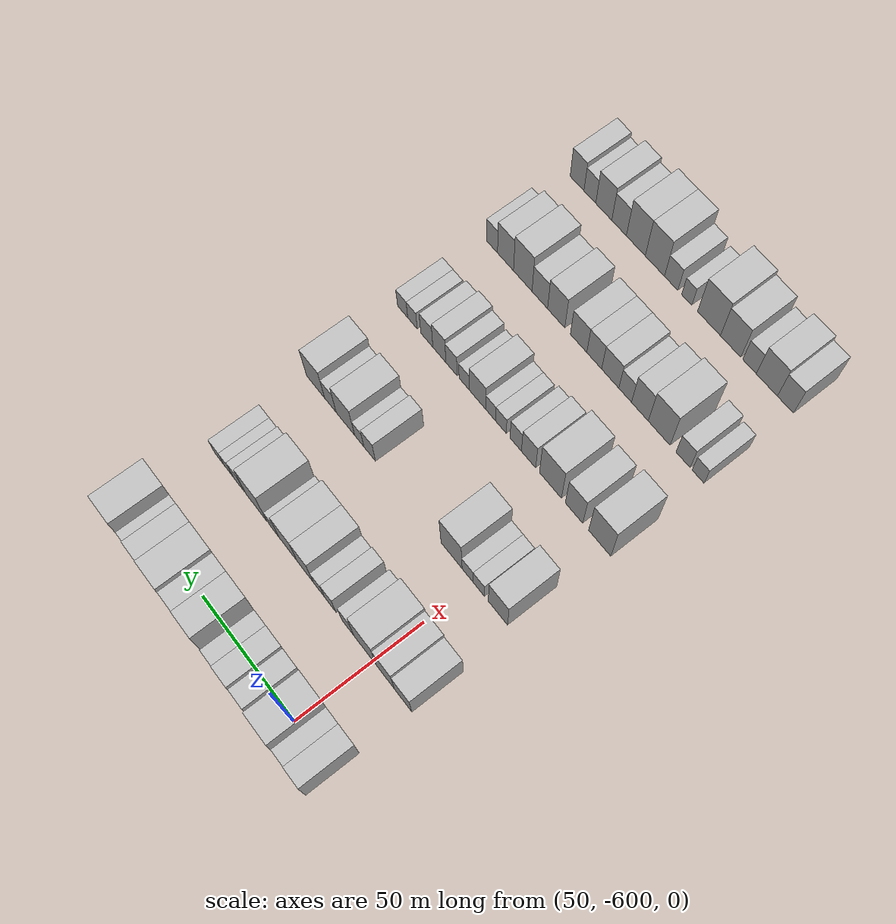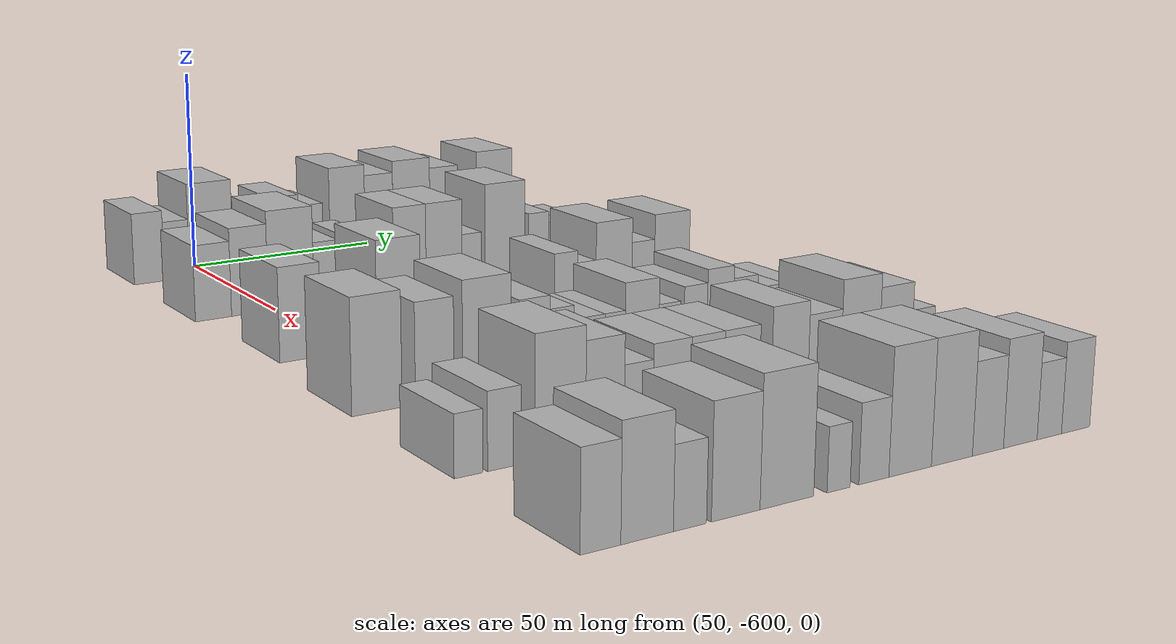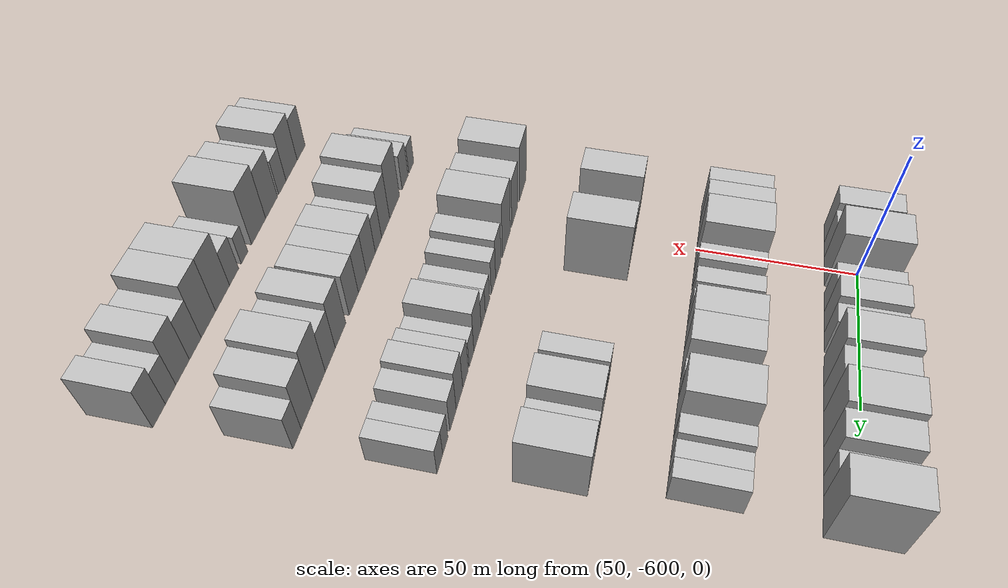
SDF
<sdf version="1.6">
 <world name="default">
  <model name="building_1">
   <static>1</static>
   <pose>50.0000 -616.0534 0 0.000000 0.000000 0.000000</pose>
   <link name="link">
    <pose>0 0 9.00 0 0 0</pose>
    <collision name="collision"><geometry><box><size>20.0000 7.8933 18.0000</size></box></geometry></collision>
    <visual name="visual">
     <cast_shadows>0</cast_shadows>
     <geometry><box><size>20.0000 7.8933 18.0000</size></box></geometry>
     <material>
      <script>
       <uri>model://HANNAS_wall/materials/scripts</uri>
       <uri>model://HANNAS_wall/materials/textures</uri>
       <name>vrc/HANNAS_wall</name>
      </script>
     </material>
    </visual>
   </link>
  </model>
  <model name="building_2">
   <static>1</static>
   <pose>50.0000 -608.7491 0 0.000000 0.000000 0.000000</pose>
   <link name="link">
    <pose>0 0 7.50 0 0 0</pose>
    <collision name="collision"><geometry><box><size>20.0000 6.7152 15.0000</size></box></geometry></collision>
    <visual name="visual">
     <cast_shadows>0</cast_shadows>
     <geometry><box><size>20.0000 6.7152 15.0000</size></box></geometry>
     <material>
      <script>
       <uri>model://HANNAS_wall/materials/scripts</uri>
       <uri>model://HANNAS_wall/materials/textures</uri>
       <name>vrc/HANNAS_wall</name>
      </script>
     </material>
    </visual>
   </link>
  </model>
  <model name="building_3">
   <static>1</static>
   <pose>50.0000 -599.4543 0 0.000000 0.000000 0.000000</pose>
   <link name="link">
    <pose>0 0 12.00 0 0 0</pose>
    <collision name="collision"><geometry><box><size>20.0000 11.8744 24.0000</size></box></geometry></collision>
    <visual name="visual">
     <cast_shadows>0</cast_shadows>
     <geometry><box><size>20.0000 11.8744 24.0000</size></box></geometry>
     <material>
      <script>
       <uri>model://HANNAS_wall/materials/scripts</uri>
       <uri>model://HANNAS_wall/materials/textures</uri>
       <name>vrc/HANNAS_wall</name>
      </script>
     </material>
    </visual>
   </link>
  </model>
  <model name="building_4">
   <static>1</static>
   <pose>50.0000 -586.7873 0 0.000000 0.000000 0.000000</pose>
   <link name="link">
    <pose>0 0 7.50 0 0 0</pose>
    <collision name="collision"><geometry><box><size>20.0000 7.4596 15.0000</size></box></geometry></collision>
    <visual name="visual">
     <cast_shadows>0</cast_shadows>
     <geometry><box><size>20.0000 7.4596 15.0000</size></box></geometry>
     <material>
      <script>
       <uri>model://HANNAS_wall/materials/scripts</uri>
       <uri>model://HANNAS_wall/materials/textures</uri>
       <name>vrc/HANNAS_wall</name>
      </script>
     </material>
    </visual>
   </link>
  </model>
  <model name="building_5">
   <static>1</static>
   <pose>50.0000 -579.0176 0 0.000000 0.000000 0.000000</pose>
   <link name="link">
    <pose>0 0 9.00 0 0 0</pose>
    <collision name="collision"><geometry><box><size>20.0000 8.0798 18.0000</size></box></geometry></collision>
    <visual name="visual">
     <cast_shadows>0</cast_shadows>
     <geometry><box><size>20.0000 8.0798 18.0000</size></box></geometry>
     <material>
      <script>
       <uri>model://HANNAS_wall/materials/scripts</uri>
       <uri>model://HANNAS_wall/materials/textures</uri>
       <name>vrc/HANNAS_wall</name>
      </script>
     </material>
    </visual>
   </link>
  </model>
  <model name="building_6">
   <static>1</static>
   <pose>50.0000 -571.4903 0 0.000000 0.000000 0.000000</pose>
   <link name="link">
    <pose>0 0 7.50 0 0 0</pose>
    <collision name="collision"><geometry><box><size>20.0000 6.9748 15.0000</size></box></geometry></collision>
    <visual name="visual">
     <cast_shadows>0</cast_shadows>
     <geometry><box><size>20.0000 6.9748 15.0000</size></box></geometry>
     <material>
      <script>
       <uri>model://HANNAS_wall/materials/scripts</uri>
       <uri>model://HANNAS_wall/materials/textures</uri>
       <name>vrc/HANNAS_wall</name>
      </script>
     </material>
    </visual>
   </link>
  </model>
  <model name="building_7">
   <static>1</static>
   <pose>50.0000 -560.8347 0 0.000000 0.000000 0.000000</pose>
   <link name="link">
    <pose>0 0 12.00 0 0 0</pose>
    <collision name="collision"><geometry><box><size>20.0000 10.3364 24.0000</size></box></geometry></collision>
    <visual name="visual">
     <cast_shadows>0</cast_shadows>
     <geometry><box><size>20.0000 10.3364 24.0000</size></box></geometry>
     <material>
      <script>
       <uri>model://HANNAS_wall/materials/scripts</uri>
       <uri>model://HANNAS_wall/materials/textures</uri>
       <name>vrc/HANNAS_wall</name>
      </script>
     </material>
    </visual>
   </link>
  </model>
  <model name="building_8">
   <static>1</static>
   <pose>50.0000 -551.4327 0 0.000000 0.000000 0.000000</pose>
   <link name="link">
    <pose>0 0 10.50 0 0 0</pose>
    <collision name="collision"><geometry><box><size>20.0000 8.4676 21.0000</size></box></geometry></collision>
    <visual name="visual">
     <cast_shadows>0</cast_shadows>
     <geometry><box><size>20.0000 8.4676 21.0000</size></box></geometry>
     <material>
      <script>
       <uri>model://HANNAS_wall/materials/scripts</uri>
       <uri>model://HANNAS_wall/materials/textures</uri>
       <name>vrc/HANNAS_wall</name>
      </script>
     </material>
    </visual>
   </link>
  </model>
  <model name="building_9">
   <static>1</static>
   <pose>50.0000 -541.5499 0 0.000000 0.000000 0.000000</pose>
   <link name="link">
    <pose>0 0 12.00 0 0 0</pose>
    <collision name="collision"><geometry><box><size>20.0000 11.2979 24.0000</size></box></geometry></collision>
    <visual name="visual">
     <cast_shadows>0</cast_shadows>
     <geometry><box><size>20.0000 11.2979 24.0000</size></box></geometry>
     <material>
      <script>
       <uri>model://HANNAS_wall/materials/scripts</uri>
       <uri>model://HANNAS_wall/materials/textures</uri>
       <name>vrc/HANNAS_wall</name>
      </script>
     </material>
    </visual>
   </link>
  </model>
  <model name="building_10">
   <static>1</static>
   <pose>50.0000 -531.5156 0 0.000000 0.000000 0.000000</pose>
   <link name="link">
    <pose>0 0 10.50 0 0 0</pose>
    <collision name="collision"><geometry><box><size>20.0000 8.7708 21.0000</size></box></geometry></collision>
    <visual name="visual">
     <cast_shadows>0</cast_shadows>
     <geometry><box><size>20.0000 8.7708 21.0000</size></box></geometry>
     <material>
      <script>
       <uri>model://HANNAS_wall/materials/scripts</uri>
       <uri>model://HANNAS_wall/materials/textures</uri>
       <name>vrc/HANNAS_wall</name>
      </script>
     </material>
    </visual>
   </link>
  </model>
  <model name="building_11">
   <static>1</static>
   <pose>50.0000 -524.1173 0 0.000000 0.000000 0.000000</pose>
   <link name="link">
    <pose>0 0 7.50 0 0 0</pose>
    <collision name="collision"><geometry><box><size>20.0000 6.0257 15.0000</size></box></geometry></collision>
    <visual name="visual">
     <cast_shadows>0</cast_shadows>
     <geometry><box><size>20.0000 6.0257 15.0000</size></box></geometry>
     <material>
      <script>
       <uri>model://HANNAS_wall/materials/scripts</uri>
       <uri>model://HANNAS_wall/materials/textures</uri>
       <name>vrc/HANNAS_wall</name>
      </script>
     </material>
    </visual>
   </link>
  </model>
  <model name="building_12">
   <static>1</static>
   <pose>50.0000 -515.4164 0 0.000000 0.000000 0.000000</pose>
   <link name="link">
    <pose>0 0 12.00 0 0 0</pose>
    <collision name="collision"><geometry><box><size>20.0000 11.3762 24.0000</size></box></geometry></collision>
    <visual name="visual">
     <cast_shadows>0</cast_shadows>
     <geometry><box><size>20.0000 11.3762 24.0000</size></box></geometry>
     <material>
      <script>
       <uri>model://HANNAS_wall/materials/scripts</uri>
       <uri>model://HANNAS_wall/materials/textures</uri>
       <name>vrc/HANNAS_wall</name>
      </script>
     </material>
    </visual>
   </link>
  </model>
  <model name="building_127">
   <static>1</static>
   <pose>90.0000 -615.5241 0 0.000000 0.000000 0.000000</pose>
   <link name="link">
    <pose>0 0 9.00 0 0 0</pose>
    <collision name="collision"><geometry><box><size>20.0000 8.9518 18.0000</size></box></geometry></collision>
    <visual name="visual">
     <cast_shadows>0</cast_shadows>
     <geometry><box><size>20.0000 8.9518 18.0000</size></box></geometry>
     <material>
      <script>
       <uri>model://HANNAS_wall/materials/scripts</uri>
       <uri>model://HANNAS_wall/materials/textures</uri>
       <name>vrc/HANNAS_wall</name>
      </script>
     </material>
    </visual>
   </link>
  </model>
  <model name="building_128">
   <static>1</static>
   <pose>90.0000 -606.3839 0 0.000000 0.000000 0.000000</pose>
   <link name="link">
    <pose>0 0 10.50 0 0 0</pose>
    <collision name="collision"><geometry><box><size>20.0000 9.3287 21.0000</size></box></geometry></collision>
    <visual name="visual">
     <cast_shadows>0</cast_shadows>
     <geometry><box><size>20.0000 9.3287 21.0000</size></box></geometry>
     <material>
      <script>
       <uri>model://HANNAS_wall/materials/scripts</uri>
       <uri>model://HANNAS_wall/materials/textures</uri>
       <name>vrc/HANNAS_wall</name>
      </script>
     </material>
    </visual>
   </link>
  </model>
  <model name="building_129">
   <static>1</static>
   <pose>90.0000 -595.7800 0 0.000000 0.000000 0.000000</pose>
   <link name="link">
    <pose>0 0 12.00 0 0 0</pose>
    <collision name="collision"><geometry><box><size>20.0000 11.8791 24.0000</size></box></geometry></collision>
    <visual name="visual">
     <cast_shadows>0</cast_shadows>
     <geometry><box><size>20.0000 11.8791 24.0000</size></box></geometry>
     <material>
      <script>
       <uri>model://HANNAS_wall/materials/scripts</uri>
       <uri>model://HANNAS_wall/materials/textures</uri>
       <name>vrc/HANNAS_wall</name>
      </script>
     </material>
    </visual>
   </link>
  </model>
  <model name="building_130">
   <static>1</static>
   <pose>90.0000 -586.6207 0 0.000000 0.000000 0.000000</pose>
   <link name="link">
    <pose>0 0 7.50 0 0 0</pose>
    <collision name="collision"><geometry><box><size>20.0000 6.4397 15.0000</size></box></geometry></collision>
    <visual name="visual">
     <cast_shadows>0</cast_shadows>
     <geometry><box><size>20.0000 6.4397 15.0000</size></box></geometry>
     <material>
      <script>
       <uri>model://HANNAS_wall/materials/scripts</uri>
       <uri>model://HANNAS_wall/materials/textures</uri>
       <name>vrc/HANNAS_wall</name>
      </script>
     </material>
    </visual>
   </link>
  </model>
  <model name="building_131">
   <static>1</static>
   <pose>90.0000 -577.3490 0 0.000000 0.000000 0.000000</pose>
   <link name="link">
    <pose>0 0 7.50 0 0 0</pose>
    <collision name="collision"><geometry><box><size>20.0000 6.1038 15.0000</size></box></geometry></collision>
    <visual name="visual">
     <cast_shadows>0</cast_shadows>
     <geometry><box><size>20.0000 6.1038 15.0000</size></box></geometry>
     <material>
      <script>
       <uri>model://HANNAS_wall/materials/scripts</uri>
       <uri>model://HANNAS_wall/materials/textures</uri>
       <name>vrc/HANNAS_wall</name>
      </script>
     </material>
    </visual>
   </link>
  </model>
  <model name="building_132">
   <static>1</static>
   <pose>90.0000 -571.3215 0 0.000000 0.000000 0.000000</pose>
   <link name="link">
    <pose>0 0 6.00 0 0 0</pose>
    <collision name="collision"><geometry><box><size>20.0000 5.9512 12.0000</size></box></geometry></collision>
    <visual name="visual">
     <cast_shadows>0</cast_shadows>
     <geometry><box><size>20.0000 5.9512 12.0000</size></box></geometry>
     <material>
      <script>
       <uri>model://HANNAS_wall/materials/scripts</uri>
       <uri>model://HANNAS_wall/materials/textures</uri>
       <name>vrc/HANNAS_wall</name>
      </script>
     </material>
    </visual>
   </link>
  </model>
  <model name="building_133">
   <static>1</static>
   <pose>90.0000 -563.7918 0 0.000000 0.000000 0.000000</pose>
   <link name="link">
    <pose>0 0 10.50 0 0 0</pose>
    <collision name="collision"><geometry><box><size>20.0000 9.1081 21.0000</size></box></geometry></collision>
    <visual name="visual">
     <cast_shadows>0</cast_shadows>
     <geometry><box><size>20.0000 9.1081 21.0000</size></box></geometry>
     <material>
      <script>
       <uri>model://HANNAS_wall/materials/scripts</uri>
       <uri>model://HANNAS_wall/materials/textures</uri>
       <name>vrc/HANNAS_wall</name>
      </script>
     </material>
    </visual>
   </link>
  </model>
  <model name="building_134">
   <static>1</static>
   <pose>90.0000 -554.0971 0 0.000000 0.000000 0.000000</pose>
   <link name="link">
    <pose>0 0 10.50 0 0 0</pose>
    <collision name="collision"><geometry><box><size>20.0000 10.2813 21.0000</size></box></geometry></collision>
    <visual name="visual">
     <cast_shadows>0</cast_shadows>
     <geometry><box><size>20.0000 10.2813 21.0000</size></box></geometry>
     <material>
      <script>
       <uri>model://HANNAS_wall/materials/scripts</uri>
       <uri>model://HANNAS_wall/materials/textures</uri>
       <name>vrc/HANNAS_wall</name>
      </script>
     </material>
    </visual>
   </link>
  </model>
  <model name="building_135">
   <static>1</static>
   <pose>90.0000 -546.1212 0 0.000000 0.000000 0.000000</pose>
   <link name="link">
    <pose>0 0 6.00 0 0 0</pose>
    <collision name="collision"><geometry><box><size>20.0000 5.6704 12.0000</size></box></geometry></collision>
    <visual name="visual">
     <cast_shadows>0</cast_shadows>
     <geometry><box><size>20.0000 5.6704 12.0000</size></box></geometry>
     <material>
      <script>
       <uri>model://HANNAS_wall/materials/scripts</uri>
       <uri>model://HANNAS_wall/materials/textures</uri>
       <name>vrc/HANNAS_wall</name>
      </script>
     </material>
    </visual>
   </link>
  </model>
  <model name="building_136">
   <static>1</static>
   <pose>90.0000 -536.3071 0 0.000000 0.000000 0.000000</pose>
   <link name="link">
    <pose>0 0 12.00 0 0 0</pose>
    <collision name="collision"><geometry><box><size>20.0000 11.9578 24.0000</size></box></geometry></collision>
    <visual name="visual">
     <cast_shadows>0</cast_shadows>
     <geometry><box><size>20.0000 11.9578 24.0000</size></box></geometry>
     <material>
      <script>
       <uri>model://HANNAS_wall/materials/scripts</uri>
       <uri>model://HANNAS_wall/materials/textures</uri>
       <name>vrc/HANNAS_wall</name>
      </script>
     </material>
    </visual>
   </link>
  </model>
  <model name="building_137">
   <static>1</static>
   <pose>90.0000 -526.3053 0 0.000000 0.000000 0.000000</pose>
   <link name="link">
    <pose>0 0 7.50 0 0 0</pose>
    <collision name="collision"><geometry><box><size>20.0000 6.0459 15.0000</size></box></geometry></collision>
    <visual name="visual">
     <cast_shadows>0</cast_shadows>
     <geometry><box><size>20.0000 6.0459 15.0000</size></box></geometry>
     <material>
      <script>
       <uri>model://HANNAS_wall/materials/scripts</uri>
       <uri>model://HANNAS_wall/materials/textures</uri>
       <name>vrc/HANNAS_wall</name>
      </script>
     </material>
    </visual>
   </link>
  </model>
  <model name="building_138">
   <static>1</static>
   <pose>90.0000 -520.5895 0 0.000000 0.000000 0.000000</pose>
   <link name="link">
    <pose>0 0 6.00 0 0 0</pose>
    <collision name="collision"><geometry><box><size>20.0000 5.3857 12.0000</size></box></geometry></collision>
    <visual name="visual">
     <cast_shadows>0</cast_shadows>
     <geometry><box><size>20.0000 5.3857 12.0000</size></box></geometry>
     <material>
      <script>
       <uri>model://HANNAS_wall/materials/scripts</uri>
       <uri>model://HANNAS_wall/materials/textures</uri>
       <name>vrc/HANNAS_wall</name>
      </script>
     </material>
    </visual>
   </link>
  </model>
  <model name="building_139">
   <static>1</static>
   <pose>90.0000 -514.9855 0 0.000000 0.000000 0.000000</pose>
   <link name="link">
    <pose>0 0 6.00 0 0 0</pose>
    <collision name="collision"><geometry><box><size>20.0000 5.8223 12.0000</size></box></geometry></collision>
    <visual name="visual">
     <cast_shadows>0</cast_shadows>
     <geometry><box><size>20.0000 5.8223 12.0000</size></box></geometry>
     <material>
      <script>
       <uri>model://HANNAS_wall/materials/scripts</uri>
       <uri>model://HANNAS_wall/materials/textures</uri>
       <name>vrc/HANNAS_wall</name>
      </script>
     </material>
    </visual>
   </link>
  </model>
  <model name="building_268">
   <static>1</static>
   <pose>130.0000 -612.1270 0 0.000000 0.000000 0.000000</pose>
   <link name="link">
    <pose>0 0 10.50 0 0 0</pose>
    <collision name="collision"><geometry><box><size>20.0000 9.7460 21.0000</size></box></geometry></collision>
    <visual name="visual">
     <cast_shadows>0</cast_shadows>
     <geometry><box><size>20.0000 9.7460 21.0000</size></box></geometry>
     <material>
      <script>
       <uri>model://HANNAS_wall/materials/scripts</uri>
       <uri>model://HANNAS_wall/materials/textures</uri>
       <name>vrc/HANNAS_wall</name>
      </script>
     </material>
    </visual>
   </link>
  </model>
  <model name="building_269">
   <static>1</static>
   <pose>130.0000 -602.3771 0 0.000000 0.000000 0.000000</pose>
   <link name="link">
    <pose>0 0 6.00 0 0 0</pose>
    <collision name="collision"><geometry><box><size>20.0000 5.7539 12.0000</size></box></geometry></collision>
    <visual name="visual">
     <cast_shadows>0</cast_shadows>
     <geometry><box><size>20.0000 5.7539 12.0000</size></box></geometry>
     <material>
      <script>
       <uri>model://HANNAS_wall/materials/scripts</uri>
       <uri>model://HANNAS_wall/materials/textures</uri>
       <name>vrc/HANNAS_wall</name>
      </script>
     </material>
    </visual>
   </link>
  </model>
  <model name="building_270">
   <static>1</static>
   <pose>130.0000 -596.6017 0 0.000000 0.000000 0.000000</pose>
   <link name="link">
    <pose>0 0 6.00 0 0 0</pose>
    <collision name="collision"><geometry><box><size>20.0000 5.7967 12.0000</size></box></geometry></collision>
    <visual name="visual">
     <cast_shadows>0</cast_shadows>
     <geometry><box><size>20.0000 5.7967 12.0000</size></box></geometry>
     <material>
      <script>
       <uri>model://HANNAS_wall/materials/scripts</uri>
       <uri>model://HANNAS_wall/materials/textures</uri>
       <name>vrc/HANNAS_wall</name>
      </script>
     </material>
    </visual>
   </link>
  </model>
  <model name="building_271">
   <static>1</static>
   <pose>130.0000 -588.2075 0 0.000000 0.000000 0.000000</pose>
   <link name="link">
    <pose>0 0 12.00 0 0 0</pose>
    <collision name="collision"><geometry><box><size>20.0000 10.9918 24.0000</size></box></geometry></collision>
    <visual name="visual">
     <cast_shadows>0</cast_shadows>
     <geometry><box><size>20.0000 10.9918 24.0000</size></box></geometry>
     <material>
      <script>
       <uri>model://HANNAS_wall/materials/scripts</uri>
       <uri>model://HANNAS_wall/materials/textures</uri>
       <name>vrc/HANNAS_wall</name>
      </script>
     </material>
    </visual>
   </link>
  </model>
  <model name="building_272">
   <static>1</static>
   <pose>130.0000 -544.0731 0 0.000000 0.000000 0.000000</pose>
   <link name="link">
    <pose>0 0 7.50 0 0 0</pose>
    <collision name="collision"><geometry><box><size>20.0000 6.4256 15.0000</size></box></geometry></collision>
    <visual name="visual">
     <cast_shadows>0</cast_shadows>
     <geometry><box><size>20.0000 6.4256 15.0000</size></box></geometry>
     <material>
      <script>
       <uri>model://HANNAS_wall/materials/scripts</uri>
       <uri>model://HANNAS_wall/materials/textures</uri>
       <name>vrc/HANNAS_wall</name>
      </script>
     </material>
    </visual>
   </link>
  </model>
  <model name="building_273">
   <static>1</static>
   <pose>130.0000 -538.2454 0 0.000000 0.000000 0.000000</pose>
   <link name="link">
    <pose>0 0 6.00 0 0 0</pose>
    <collision name="collision"><geometry><box><size>20.0000 5.2299 12.0000</size></box></geometry></collision>
    <visual name="visual">
     <cast_shadows>0</cast_shadows>
     <geometry><box><size>20.0000 5.2299 12.0000</size></box></geometry>
     <material>
      <script>
       <uri>model://HANNAS_wall/materials/scripts</uri>
       <uri>model://HANNAS_wall/materials/textures</uri>
       <name>vrc/HANNAS_wall</name>
      </script>
     </material>
    </visual>
   </link>
  </model>
  <model name="building_274">
   <static>1</static>
   <pose>130.0000 -530.4458 0 0.000000 0.000000 0.000000</pose>
   <link name="link">
    <pose>0 0 10.50 0 0 0</pose>
    <collision name="collision"><geometry><box><size>20.0000 10.3692 21.0000</size></box></geometry></collision>
    <visual name="visual">
     <cast_shadows>0</cast_shadows>
     <geometry><box><size>20.0000 10.3692 21.0000</size></box></geometry>
     <material>
      <script>
       <uri>model://HANNAS_wall/materials/scripts</uri>
       <uri>model://HANNAS_wall/materials/textures</uri>
       <name>vrc/HANNAS_wall</name>
      </script>
     </material>
    </visual>
   </link>
  </model>
  <model name="building_275">
   <static>1</static>
   <pose>130.0000 -521.9580 0 0.000000 0.000000 0.000000</pose>
   <link name="link">
    <pose>0 0 7.50 0 0 0</pose>
    <collision name="collision"><geometry><box><size>20.0000 6.6066 15.0000</size></box></geometry></collision>
    <visual name="visual">
     <cast_shadows>0</cast_shadows>
     <geometry><box><size>20.0000 6.6066 15.0000</size></box></geometry>
     <material>
      <script>
       <uri>model://HANNAS_wall/materials/scripts</uri>
       <uri>model://HANNAS_wall/materials/textures</uri>
       <name>vrc/HANNAS_wall</name>
      </script>
     </material>
    </visual>
   </link>
  </model>
  <model name="building_276">
   <static>1</static>
   <pose>130.0000 -513.4637 0 0.000000 0.000000 0.000000</pose>
   <link name="link">
    <pose>0 0 10.50 0 0 0</pose>
    <collision name="collision"><geometry><box><size>20.0000 10.3819 21.0000</size></box></geometry></collision>
    <visual name="visual">
     <cast_shadows>0</cast_shadows>
     <geometry><box><size>20.0000 10.3819 21.0000</size></box></geometry>
     <material>
      <script>
       <uri>model://HANNAS_wall/materials/scripts</uri>
       <uri>model://HANNAS_wall/materials/textures</uri>
       <name>vrc/HANNAS_wall</name>
      </script>
     </material>
    </visual>
   </link>
  </model>
  <model name="building_397">
   <static>1</static>
   <pose>170.0000 -614.4564 0 0.000000 0.000000 0.000000</pose>
   <link name="link">
    <pose>0 0 12.00 0 0 0</pose>
    <collision name="collision"><geometry><box><size>20.0000 11.0872 24.0000</size></box></geometry></collision>
    <visual name="visual">
     <cast_shadows>0</cast_shadows>
     <geometry><box><size>20.0000 11.0872 24.0000</size></box></geometry>
     <material>
      <script>
       <uri>model://HANNAS_wall/materials/scripts</uri>
       <uri>model://HANNAS_wall/materials/textures</uri>
       <name>vrc/HANNAS_wall</name>
      </script>
     </material>
    </visual>
   </link>
  </model>
  <model name="building_398">
   <static>1</static>
   <pose>170.0000 -601.4947 0 0.000000 0.000000 0.000000</pose>
   <link name="link">
    <pose>0 0 10.50 0 0 0</pose>
    <collision name="collision"><geometry><box><size>20.0000 8.8363 21.0000</size></box></geometry></collision>
    <visual name="visual">
     <cast_shadows>0</cast_shadows>
     <geometry><box><size>20.0000 8.8363 21.0000</size></box></geometry>
     <material>
      <script>
       <uri>model://HANNAS_wall/materials/scripts</uri>
       <uri>model://HANNAS_wall/materials/textures</uri>
       <name>vrc/HANNAS_wall</name>
      </script>
     </material>
    </visual>
   </link>
  </model>
  <model name="building_399">
   <static>1</static>
   <pose>170.0000 -589.3943 0 0.000000 0.000000 0.000000</pose>
   <link name="link">
    <pose>0 0 12.00 0 0 0</pose>
    <collision name="collision"><geometry><box><size>20.0000 11.3645 24.0000</size></box></geometry></collision>
    <visual name="visual">
     <cast_shadows>0</cast_shadows>
     <geometry><box><size>20.0000 11.3645 24.0000</size></box></geometry>
     <material>
      <script>
       <uri>model://HANNAS_wall/materials/scripts</uri>
       <uri>model://HANNAS_wall/materials/textures</uri>
       <name>vrc/HANNAS_wall</name>
      </script>
     </material>
    </visual>
   </link>
  </model>
  <model name="building_400">
   <static>1</static>
   <pose>170.0000 -578.0008 0 0.000000 0.000000 0.000000</pose>
   <link name="link">
    <pose>0 0 9.00 0 0 0</pose>
    <collision name="collision"><geometry><box><size>20.0000 7.4225 18.0000</size></box></geometry></collision>
    <visual name="visual">
     <cast_shadows>0</cast_shadows>
     <geometry><box><size>20.0000 7.4225 18.0000</size></box></geometry>
     <material>
      <script>
       <uri>model://HANNAS_wall/materials/scripts</uri>
       <uri>model://HANNAS_wall/materials/textures</uri>
       <name>vrc/HANNAS_wall</name>
      </script>
     </material>
    </visual>
   </link>
  </model>
  <model name="building_401">
   <static>1</static>
   <pose>170.0000 -571.2800 0 0.000000 0.000000 0.000000</pose>
   <link name="link">
    <pose>0 0 7.50 0 0 0</pose>
    <collision name="collision"><geometry><box><size>20.0000 6.0192 15.0000</size></box></geometry></collision>
    <visual name="visual">
     <cast_shadows>0</cast_shadows>
     <geometry><box><size>20.0000 6.0192 15.0000</size></box></geometry>
     <material>
      <script>
       <uri>model://HANNAS_wall/materials/scripts</uri>
       <uri>model://HANNAS_wall/materials/textures</uri>
       <name>vrc/HANNAS_wall</name>
      </script>
     </material>
    </visual>
   </link>
  </model>
  <model name="building_402">
   <static>1</static>
   <pose>170.0000 -563.3918 0 0.000000 0.000000 0.000000</pose>
   <link name="link">
    <pose>0 0 6.00 0 0 0</pose>
    <collision name="collision"><geometry><box><size>20.0000 5.7573 12.0000</size></box></geometry></collision>
    <visual name="visual">
     <cast_shadows>0</cast_shadows>
     <geometry><box><size>20.0000 5.7573 12.0000</size></box></geometry>
     <material>
      <script>
       <uri>model://HANNAS_wall/materials/scripts</uri>
       <uri>model://HANNAS_wall/materials/textures</uri>
       <name>vrc/HANNAS_wall</name>
      </script>
     </material>
    </visual>
   </link>
  </model>
  <model name="building_403">
   <static>1</static>
   <pose>170.0000 -557.9150 0 0.000000 0.000000 0.000000</pose>
   <link name="link">
    <pose>0 0 6.00 0 0 0</pose>
    <collision name="collision"><geometry><box><size>20.0000 5.1961 12.0000</size></box></geometry></collision>
    <visual name="visual">
     <cast_shadows>0</cast_shadows>
     <geometry><box><size>20.0000 5.1961 12.0000</size></box></geometry>
     <material>
      <script>
       <uri>model://HANNAS_wall/materials/scripts</uri>
       <uri>model://HANNAS_wall/materials/textures</uri>
       <name>vrc/HANNAS_wall</name>
      </script>
     </material>
    </visual>
   </link>
  </model>
  <model name="building_404">
   <static>1</static>
   <pose>170.0000 -550.8829 0 0.000000 0.000000 0.000000</pose>
   <link name="link">
    <pose>0 0 9.00 0 0 0</pose>
    <collision name="collision"><geometry><box><size>20.0000 8.8681 18.0000</size></box></geometry></collision>
    <visual name="visual">
     <cast_shadows>0</cast_shadows>
     <geometry><box><size>20.0000 8.8681 18.0000</size></box></geometry>
     <material>
      <script>
       <uri>model://HANNAS_wall/materials/scripts</uri>
       <uri>model://HANNAS_wall/materials/textures</uri>
       <name>vrc/HANNAS_wall</name>
      </script>
     </material>
    </visual>
   </link>
  </model>
  <model name="building_405">
   <static>1</static>
   <pose>170.0000 -543.5947 0 0.000000 0.000000 0.000000</pose>
   <link name="link">
    <pose>0 0 6.00 0 0 0</pose>
    <collision name="collision"><geometry><box><size>20.0000 5.7083 12.0000</size></box></geometry></collision>
    <visual name="visual">
     <cast_shadows>0</cast_shadows>
     <geometry><box><size>20.0000 5.7083 12.0000</size></box></geometry>
     <material>
      <script>
       <uri>model://HANNAS_wall/materials/scripts</uri>
       <uri>model://HANNAS_wall/materials/textures</uri>
       <name>vrc/HANNAS_wall</name>
      </script>
     </material>
    </visual>
   </link>
  </model>
  <model name="building_406">
   <static>1</static>
   <pose>170.0000 -536.6129 0 0.000000 0.000000 0.000000</pose>
   <link name="link">
    <pose>0 0 7.50 0 0 0</pose>
    <collision name="collision"><geometry><box><size>20.0000 6.2552 15.0000</size></box></geometry></collision>
    <visual name="visual">
     <cast_shadows>0</cast_shadows>
     <geometry><box><size>20.0000 6.2552 15.0000</size></box></geometry>
     <material>
      <script>
       <uri>model://HANNAS_wall/materials/scripts</uri>
       <uri>model://HANNAS_wall/materials/textures</uri>
       <name>vrc/HANNAS_wall</name>
      </script>
     </material>
    </visual>
   </link>
  </model>
  <model name="building_407">
   <static>1</static>
   <pose>170.0000 -529.8429 0 0.000000 0.000000 0.000000</pose>
   <link name="link">
    <pose>0 0 9.00 0 0 0</pose>
    <collision name="collision"><geometry><box><size>20.0000 7.2847 18.0000</size></box></geometry></collision>
    <visual name="visual">
     <cast_shadows>0</cast_shadows>
     <geometry><box><size>20.0000 7.2847 18.0000</size></box></geometry>
     <material>
      <script>
       <uri>model://HANNAS_wall/materials/scripts</uri>
       <uri>model://HANNAS_wall/materials/textures</uri>
       <name>vrc/HANNAS_wall</name>
      </script>
     </material>
    </visual>
   </link>
  </model>
  <model name="building_408">
   <static>1</static>
   <pose>170.0000 -522.7960 0 0.000000 0.000000 0.000000</pose>
   <link name="link">
    <pose>0 0 7.50 0 0 0</pose>
    <collision name="collision"><geometry><box><size>20.0000 6.8091 15.0000</size></box></geometry></collision>
    <visual name="visual">
     <cast_shadows>0</cast_shadows>
     <geometry><box><size>20.0000 6.8091 15.0000</size></box></geometry>
     <material>
      <script>
       <uri>model://HANNAS_wall/materials/scripts</uri>
       <uri>model://HANNAS_wall/materials/textures</uri>
       <name>vrc/HANNAS_wall</name>
      </script>
     </material>
    </visual>
   </link>
  </model>
  <model name="building_409">
   <static>1</static>
   <pose>170.0000 -514.6942 0 0.000000 0.000000 0.000000</pose>
   <link name="link">
    <pose>0 0 6.00 0 0 0</pose>
    <collision name="collision"><geometry><box><size>20.0000 5.3947 12.0000</size></box></geometry></collision>
    <visual name="visual">
     <cast_shadows>0</cast_shadows>
     <geometry><box><size>20.0000 5.3947 12.0000</size></box></geometry>
     <material>
      <script>
       <uri>model://HANNAS_wall/materials/scripts</uri>
       <uri>model://HANNAS_wall/materials/textures</uri>
       <name>vrc/HANNAS_wall</name>
      </script>
     </material>
    </visual>
   </link>
  </model>
  <model name="building_410">
   <static>1</static>
   <pose>170.0000 -509.0949 0 0.000000 0.000000 0.000000</pose>
   <link name="link">
    <pose>0 0 6.00 0 0 0</pose>
    <collision name="collision"><geometry><box><size>20.0000 5.8039 12.0000</size></box></geometry></collision>
    <visual name="visual">
     <cast_shadows>0</cast_shadows>
     <geometry><box><size>20.0000 5.8039 12.0000</size></box></geometry>
     <material>
      <script>
       <uri>model://HANNAS_wall/materials/scripts</uri>
       <uri>model://HANNAS_wall/materials/textures</uri>
       <name>vrc/HANNAS_wall</name>
      </script>
     </material>
    </visual>
   </link>
  </model>
  <model name="building_537">
   <static>1</static>
   <pose>210.0000 -617.0647 0 0.000000 0.000000 0.000000</pose>
   <link name="link">
    <pose>0 0 6.00 0 0 0</pose>
    <collision name="collision"><geometry><box><size>20.0000 5.8706 12.0000</size></box></geometry></collision>
    <visual name="visual">
     <cast_shadows>0</cast_shadows>
     <geometry><box><size>20.0000 5.8706 12.0000</size></box></geometry>
     <material>
      <script>
       <uri>model://HANNAS_wall/materials/scripts</uri>
       <uri>model://HANNAS_wall/materials/textures</uri>
       <name>vrc/HANNAS_wall</name>
      </script>
     </material>
    </visual>
   </link>
  </model>
  <model name="building_538">
   <static>1</static>
   <pose>210.0000 -609.6334 0 0.000000 0.000000 0.000000</pose>
   <link name="link">
    <pose>0 0 7.50 0 0 0</pose>
    <collision name="collision"><geometry><box><size>20.0000 6.9920 15.0000</size></box></geometry></collision>
    <visual name="visual">
     <cast_shadows>0</cast_shadows>
     <geometry><box><size>20.0000 6.9920 15.0000</size></box></geometry>
     <material>
      <script>
       <uri>model://HANNAS_wall/materials/scripts</uri>
       <uri>model://HANNAS_wall/materials/textures</uri>
       <name>vrc/HANNAS_wall</name>
      </script>
     </material>
    </visual>
   </link>
  </model>
  <model name="building_539">
   <static>1</static>
   <pose>210.0000 -597.6401 0 0.000000 0.000000 0.000000</pose>
   <link name="link">
    <pose>0 0 12.00 0 0 0</pose>
    <collision name="collision"><geometry><box><size>20.0000 10.9945 24.0000</size></box></geometry></collision>
    <visual name="visual">
     <cast_shadows>0</cast_shadows>
     <geometry><box><size>20.0000 10.9945 24.0000</size></box></geometry>
     <material>
      <script>
       <uri>model://HANNAS_wall/materials/scripts</uri>
       <uri>model://HANNAS_wall/materials/textures</uri>
       <name>vrc/HANNAS_wall</name>
      </script>
     </material>
    </visual>
   </link>
  </model>
  <model name="building_540">
   <static>1</static>
   <pose>210.0000 -587.8263 0 0.000000 0.000000 0.000000</pose>
   <link name="link">
    <pose>0 0 10.50 0 0 0</pose>
    <collision name="collision"><geometry><box><size>20.0000 8.6330 21.0000</size></box></geometry></collision>
    <visual name="visual">
     <cast_shadows>0</cast_shadows>
     <geometry><box><size>20.0000 8.6330 21.0000</size></box></geometry>
     <material>
      <script>
       <uri>model://HANNAS_wall/materials/scripts</uri>
       <uri>model://HANNAS_wall/materials/textures</uri>
       <name>vrc/HANNAS_wall</name>
      </script>
     </material>
    </visual>
   </link>
  </model>
  <model name="building_541">
   <static>1</static>
   <pose>210.0000 -580.2278 0 0.000000 0.000000 0.000000</pose>
   <link name="link">
    <pose>0 0 7.50 0 0 0</pose>
    <collision name="collision"><geometry><box><size>20.0000 6.5640 15.0000</size></box></geometry></collision>
    <visual name="visual">
     <cast_shadows>0</cast_shadows>
     <geometry><box><size>20.0000 6.5640 15.0000</size></box></geometry>
     <material>
      <script>
       <uri>model://HANNAS_wall/materials/scripts</uri>
       <uri>model://HANNAS_wall/materials/textures</uri>
       <name>vrc/HANNAS_wall</name>
      </script>
     </material>
    </visual>
   </link>
  </model>
  <model name="building_542">
   <static>1</static>
   <pose>210.0000 -572.4561 0 0.000000 0.000000 0.000000</pose>
   <link name="link">
    <pose>0 0 9.00 0 0 0</pose>
    <collision name="collision"><geometry><box><size>20.0000 8.9795 18.0000</size></box></geometry></collision>
    <visual name="visual">
     <cast_shadows>0</cast_shadows>
     <geometry><box><size>20.0000 8.9795 18.0000</size></box></geometry>
     <material>
      <script>
       <uri>model://HANNAS_wall/materials/scripts</uri>
       <uri>model://HANNAS_wall/materials/textures</uri>
       <name>vrc/HANNAS_wall</name>
      </script>
     </material>
    </visual>
   </link>
  </model>
  <model name="building_543">
   <static>1</static>
   <pose>210.0000 -564.0490 0 0.000000 0.000000 0.000000</pose>
   <link name="link">
    <pose>0 0 9.00 0 0 0</pose>
    <collision name="collision"><geometry><box><size>20.0000 7.8347 18.0000</size></box></geometry></collision>
    <visual name="visual">
     <cast_shadows>0</cast_shadows>
     <geometry><box><size>20.0000 7.8347 18.0000</size></box></geometry>
     <material>
      <script>
       <uri>model://HANNAS_wall/materials/scripts</uri>
       <uri>model://HANNAS_wall/materials/textures</uri>
       <name>vrc/HANNAS_wall</name>
      </script>
     </material>
    </visual>
   </link>
  </model>
  <model name="building_544">
   <static>1</static>
   <pose>210.0000 -555.7658 0 0.000000 0.000000 0.000000</pose>
   <link name="link">
    <pose>0 0 9.00 0 0 0</pose>
    <collision name="collision"><geometry><box><size>20.0000 8.7315 18.0000</size></box></geometry></collision>
    <visual name="visual">
     <cast_shadows>0</cast_shadows>
     <geometry><box><size>20.0000 8.7315 18.0000</size></box></geometry>
     <material>
      <script>
       <uri>model://HANNAS_wall/materials/scripts</uri>
       <uri>model://HANNAS_wall/materials/textures</uri>
       <name>vrc/HANNAS_wall</name>
      </script>
     </material>
    </visual>
   </link>
  </model>
  <model name="building_545">
   <static>1</static>
   <pose>210.0000 -543.7235 0 0.000000 0.000000 0.000000</pose>
   <link name="link">
    <pose>0 0 10.50 0 0 0</pose>
    <collision name="collision"><geometry><box><size>20.0000 9.3531 21.0000</size></box></geometry></collision>
    <visual name="visual">
     <cast_shadows>0</cast_shadows>
     <geometry><box><size>20.0000 9.3531 21.0000</size></box></geometry>
     <material>
      <script>
       <uri>model://HANNAS_wall/materials/scripts</uri>
       <uri>model://HANNAS_wall/materials/textures</uri>
       <name>vrc/HANNAS_wall</name>
      </script>
     </material>
    </visual>
   </link>
  </model>
  <model name="building_546">
   <static>1</static>
   <pose>210.0000 -534.7892 0 0.000000 0.000000 0.000000</pose>
   <link name="link">
    <pose>0 0 9.00 0 0 0</pose>
    <collision name="collision"><geometry><box><size>20.0000 8.5157 18.0000</size></box></geometry></collision>
    <visual name="visual">
     <cast_shadows>0</cast_shadows>
     <geometry><box><size>20.0000 8.5157 18.0000</size></box></geometry>
     <material>
      <script>
       <uri>model://HANNAS_wall/materials/scripts</uri>
       <uri>model://HANNAS_wall/materials/textures</uri>
       <name>vrc/HANNAS_wall</name>
      </script>
     </material>
    </visual>
   </link>
  </model>
  <model name="building_547">
   <static>1</static>
   <pose>210.0000 -525.3998 0 0.000000 0.000000 0.000000</pose>
   <link name="link">
    <pose>0 0 12.00 0 0 0</pose>
    <collision name="collision"><geometry><box><size>20.0000 10.2631 24.0000</size></box></geometry></collision>
    <visual name="visual">
     <cast_shadows>0</cast_shadows>
     <geometry><box><size>20.0000 10.2631 24.0000</size></box></geometry>
     <material>
      <script>
       <uri>model://HANNAS_wall/materials/scripts</uri>
       <uri>model://HANNAS_wall/materials/textures</uri>
       <name>vrc/HANNAS_wall</name>
      </script>
     </material>
    </visual>
   </link>
  </model>
  <model name="building_548">
   <static>1</static>
   <pose>210.0000 -515.7848 0 0.000000 0.000000 0.000000</pose>
   <link name="link">
    <pose>0 0 10.50 0 0 0</pose>
    <collision name="collision"><geometry><box><size>20.0000 8.9668 21.0000</size></box></geometry></collision>
    <visual name="visual">
     <cast_shadows>0</cast_shadows>
     <geometry><box><size>20.0000 8.9668 21.0000</size></box></geometry>
     <material>
      <script>
       <uri>model://HANNAS_wall/materials/scripts</uri>
       <uri>model://HANNAS_wall/materials/textures</uri>
       <name>vrc/HANNAS_wall</name>
      </script>
     </material>
    </visual>
   </link>
  </model>
  <model name="building_549">
   <static>1</static>
   <pose>210.0000 -508.1912 0 0.000000 0.000000 0.000000</pose>
   <link name="link">
    <pose>0 0 7.50 0 0 0</pose>
    <collision name="collision"><geometry><box><size>20.0000 6.2206 15.0000</size></box></geometry></collision>
    <visual name="visual">
     <cast_shadows>0</cast_shadows>
     <geometry><box><size>20.0000 6.2206 15.0000</size></box></geometry>
     <material>
      <script>
       <uri>model://HANNAS_wall/materials/scripts</uri>
       <uri>model://HANNAS_wall/materials/textures</uri>
       <name>vrc/HANNAS_wall</name>
      </script>
     </material>
    </visual>
   </link>
  </model>
  <model name="building_672">
   <static>1</static>
   <pose>250.0000 -616.0796 0 0.000000 0.000000 0.000000</pose>
   <link name="link">
    <pose>0 0 9.00 0 0 0</pose>
    <collision name="collision"><geometry><box><size>20.0000 7.8408 18.0000</size></box></geometry></collision>
    <visual name="visual">
     <cast_shadows>0</cast_shadows>
     <geometry><box><size>20.0000 7.8408 18.0000</size></box></geometry>
     <material>
      <script>
       <uri>model://HANNAS_wall/materials/scripts</uri>
       <uri>model://HANNAS_wall/materials/textures</uri>
       <name>vrc/HANNAS_wall</name>
      </script>
     </material>
    </visual>
   </link>
  </model>
  <model name="building_673">
   <static>1</static>
   <pose>250.0000 -606.9394 0 0.000000 0.000000 0.000000</pose>
   <link name="link">
    <pose>0 0 10.50 0 0 0</pose>
    <collision name="collision"><geometry><box><size>20.0000 10.4395 21.0000</size></box></geometry></collision>
    <visual name="visual">
     <cast_shadows>0</cast_shadows>
     <geometry><box><size>20.0000 10.4395 21.0000</size></box></geometry>
     <material>
      <script>
       <uri>model://HANNAS_wall/materials/scripts</uri>
       <uri>model://HANNAS_wall/materials/textures</uri>
       <name>vrc/HANNAS_wall</name>
      </script>
     </material>
    </visual>
   </link>
  </model>
  <model name="building_674">
   <static>1</static>
   <pose>250.0000 -598.3236 0 0.000000 0.000000 0.000000</pose>
   <link name="link">
    <pose>0 0 7.50 0 0 0</pose>
    <collision name="collision"><geometry><box><size>20.0000 6.7920 15.0000</size></box></geometry></collision>
    <visual name="visual">
     <cast_shadows>0</cast_shadows>
     <geometry><box><size>20.0000 6.7920 15.0000</size></box></geometry>
     <material>
      <script>
       <uri>model://HANNAS_wall/materials/scripts</uri>
       <uri>model://HANNAS_wall/materials/textures</uri>
       <name>vrc/HANNAS_wall</name>
      </script>
     </material>
    </visual>
   </link>
  </model>
  <model name="building_675">
   <static>1</static>
   <pose>250.0000 -588.7801 0 0.000000 0.000000 0.000000</pose>
   <link name="link">
    <pose>0 0 10.50 0 0 0</pose>
    <collision name="collision"><geometry><box><size>20.0000 10.2950 21.0000</size></box></geometry></collision>
    <visual name="visual">
     <cast_shadows>0</cast_shadows>
     <geometry><box><size>20.0000 10.2950 21.0000</size></box></geometry>
     <material>
      <script>
       <uri>model://HANNAS_wall/materials/scripts</uri>
       <uri>model://HANNAS_wall/materials/textures</uri>
       <name>vrc/HANNAS_wall</name>
      </script>
     </material>
    </visual>
   </link>
  </model>
  <model name="building_676">
   <static>1</static>
   <pose>250.0000 -577.7416 0 0.000000 0.000000 0.000000</pose>
   <link name="link">
    <pose>0 0 12.00 0 0 0</pose>
    <collision name="collision"><geometry><box><size>20.0000 11.7819 24.0000</size></box></geometry></collision>
    <visual name="visual">
     <cast_shadows>0</cast_shadows>
     <geometry><box><size>20.0000 11.7819 24.0000</size></box></geometry>
     <material>
      <script>
       <uri>model://HANNAS_wall/materials/scripts</uri>
       <uri>model://HANNAS_wall/materials/textures</uri>
       <name>vrc/HANNAS_wall</name>
      </script>
     </material>
    </visual>
   </link>
  </model>
  <model name="building_677">
   <static>1</static>
   <pose>250.0000 -566.2096 0 0.000000 0.000000 0.000000</pose>
   <link name="link">
    <pose>0 0 6.00 0 0 0</pose>
    <collision name="collision"><geometry><box><size>20.0000 5.2821 12.0000</size></box></geometry></collision>
    <visual name="visual">
     <cast_shadows>0</cast_shadows>
     <geometry><box><size>20.0000 5.2821 12.0000</size></box></geometry>
     <material>
      <script>
       <uri>model://HANNAS_wall/materials/scripts</uri>
       <uri>model://HANNAS_wall/materials/textures</uri>
       <name>vrc/HANNAS_wall</name>
      </script>
     </material>
    </visual>
   </link>
  </model>
  <model name="building_678">
   <static>1</static>
   <pose>250.0000 -558.0575 0 0.000000 0.000000 0.000000</pose>
   <link name="link">
    <pose>0 0 7.50 0 0 0</pose>
    <collision name="collision"><geometry><box><size>20.0000 7.0221 15.0000</size></box></geometry></collision>
    <visual name="visual">
     <cast_shadows>0</cast_shadows>
     <geometry><box><size>20.0000 7.0221 15.0000</size></box></geometry>
     <material>
      <script>
       <uri>model://HANNAS_wall/materials/scripts</uri>
       <uri>model://HANNAS_wall/materials/textures</uri>
       <name>vrc/HANNAS_wall</name>
      </script>
     </material>
    </visual>
   </link>
  </model>
  <model name="building_679">
   <static>1</static>
   <pose>250.0000 -549.4162 0 0.000000 0.000000 0.000000</pose>
   <link name="link">
    <pose>0 0 12.00 0 0 0</pose>
    <collision name="collision"><geometry><box><size>20.0000 10.2605 24.0000</size></box></geometry></collision>
    <visual name="visual">
     <cast_shadows>0</cast_shadows>
     <geometry><box><size>20.0000 10.2605 24.0000</size></box></geometry>
     <material>
      <script>
       <uri>model://HANNAS_wall/materials/scripts</uri>
       <uri>model://HANNAS_wall/materials/textures</uri>
       <name>vrc/HANNAS_wall</name>
      </script>
     </material>
    </visual>
   </link>
  </model>
  <model name="building_680">
   <static>1</static>
   <pose>250.0000 -539.1838 0 0.000000 0.000000 0.000000</pose>
   <link name="link">
    <pose>0 0 12.00 0 0 0</pose>
    <collision name="collision"><geometry><box><size>20.0000 10.2043 24.0000</size></box></geometry></collision>
    <visual name="visual">
     <cast_shadows>0</cast_shadows>
     <geometry><box><size>20.0000 10.2043 24.0000</size></box></geometry>
     <material>
      <script>
       <uri>model://HANNAS_wall/materials/scripts</uri>
       <uri>model://HANNAS_wall/materials/textures</uri>
       <name>vrc/HANNAS_wall</name>
      </script>
     </material>
    </visual>
   </link>
  </model>
  <model name="building_681">
   <static>1</static>
   <pose>250.0000 -530.1070 0 0.000000 0.000000 0.000000</pose>
   <link name="link">
    <pose>0 0 9.00 0 0 0</pose>
    <collision name="collision"><geometry><box><size>20.0000 7.9494 18.0000</size></box></geometry></collision>
    <visual name="visual">
     <cast_shadows>0</cast_shadows>
     <geometry><box><size>20.0000 7.9494 18.0000</size></box></geometry>
     <material>
      <script>
       <uri>model://HANNAS_wall/materials/scripts</uri>
       <uri>model://HANNAS_wall/materials/textures</uri>
       <name>vrc/HANNAS_wall</name>
      </script>
     </material>
    </visual>
   </link>
  </model>
  <model name="building_682">
   <static>1</static>
   <pose>250.0000 -521.7207 0 0.000000 0.000000 0.000000</pose>
   <link name="link">
    <pose>0 0 10.50 0 0 0</pose>
    <collision name="collision"><geometry><box><size>20.0000 8.8232 21.0000</size></box></geometry></collision>
    <visual name="visual">
     <cast_shadows>0</cast_shadows>
     <geometry><box><size>20.0000 8.8232 21.0000</size></box></geometry>
     <material>
      <script>
       <uri>model://HANNAS_wall/materials/scripts</uri>
       <uri>model://HANNAS_wall/materials/textures</uri>
       <name>vrc/HANNAS_wall</name>
      </script>
     </material>
    </visual>
   </link>
  </model>
  <model name="building_683">
   <static>1</static>
   <pose>250.0000 -514.0309 0 0.000000 0.000000 0.000000</pose>
   <link name="link">
    <pose>0 0 7.50 0 0 0</pose>
    <collision name="collision"><geometry><box><size>20.0000 6.5564 15.0000</size></box></geometry></collision>
    <visual name="visual">
     <cast_shadows>0</cast_shadows>
     <geometry><box><size>20.0000 6.5564 15.0000</size></box></geometry>
     <material>
      <script>
       <uri>model://HANNAS_wall/materials/scripts</uri>
       <uri>model://HANNAS_wall/materials/textures</uri>
       <name>vrc/HANNAS_wall</name>
      </script>
     </material>
    </visual>
   </link>
  </model>
  <model name="building_684">
   <static>1</static>
   <pose>250.0000 -506.8853 0 0.000000 0.000000 0.000000</pose>
   <link name="link">
    <pose>0 0 9.00 0 0 0</pose>
    <collision name="collision"><geometry><box><size>20.0000 7.7347 18.0000</size></box></geometry></collision>
    <visual name="visual">
     <cast_shadows>0</cast_shadows>
     <geometry><box><size>20.0000 7.7347 18.0000</size></box></geometry>
     <material>
      <script>
       <uri>model://HANNAS_wall/materials/scripts</uri>
       <uri>model://HANNAS_wall/materials/textures</uri>
       <name>vrc/HANNAS_wall</name>
      </script>
     </material>
    </visual>
   </link>
  </model>
 </world>
</sdf>
